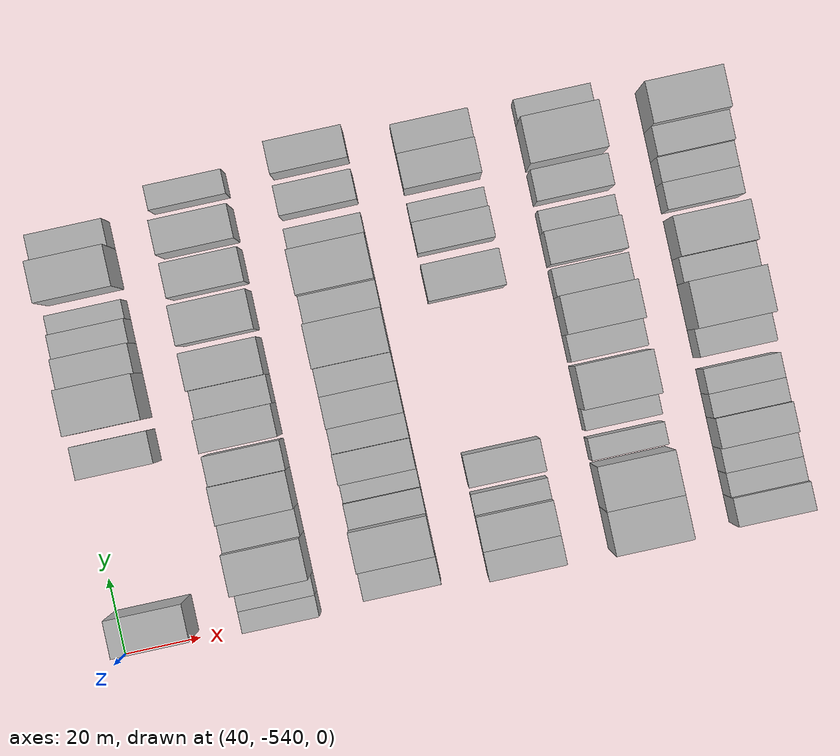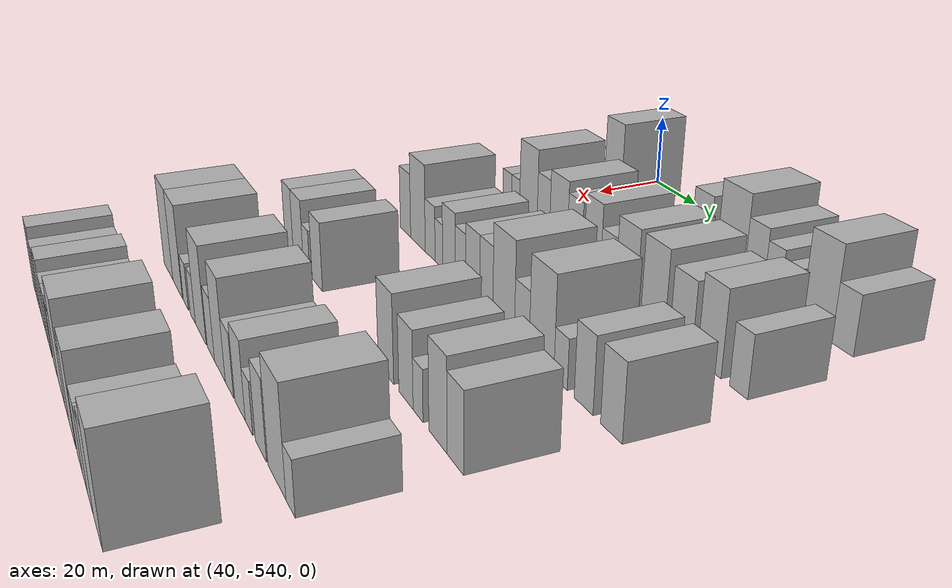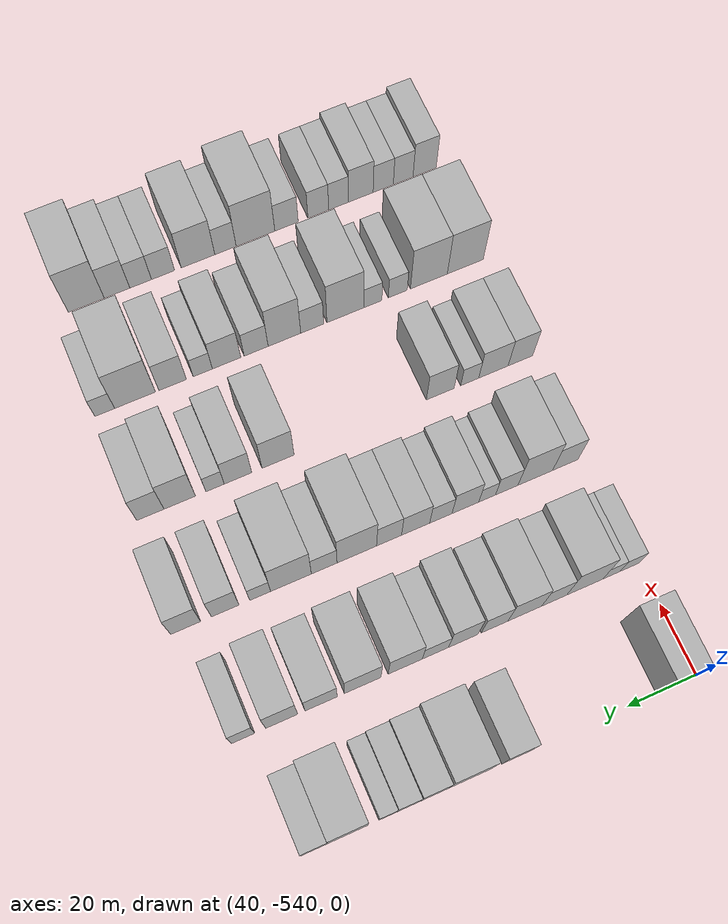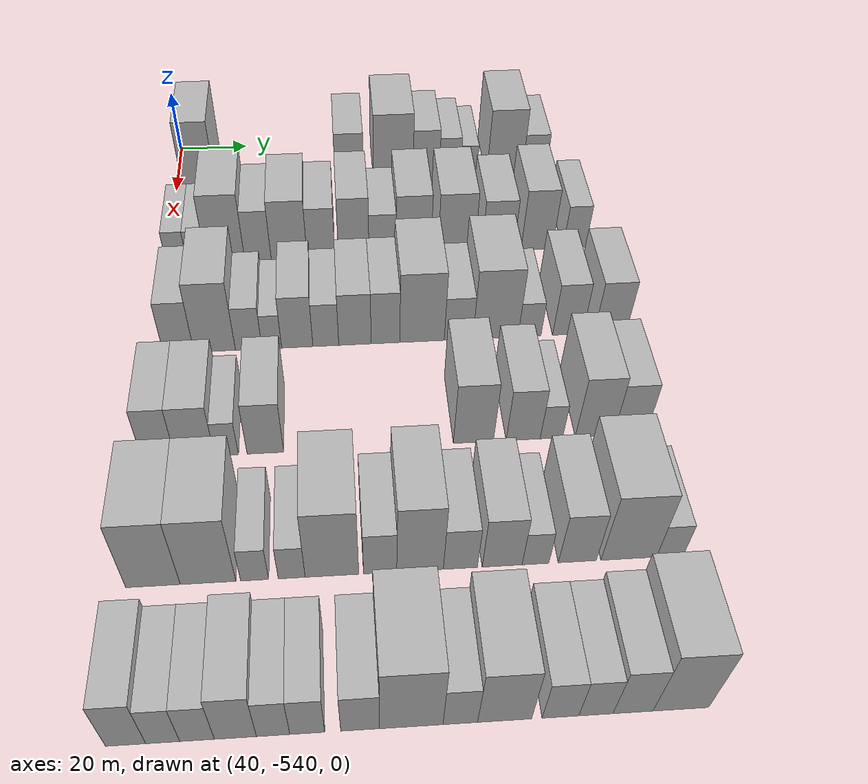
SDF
<sdf version="1.6">
 <world name="default">
  <model name="building_1">
   <static>1</static>
   <pose>50.0000 -533.1544 0 0.000000 0.000000 0.000000</pose>
   <link name="link">
    <pose>0 0 12.00 0 0 0</pose>
    <collision name="collision"><geometry><box><size>20.0000 9.6913 24.0000</size></box></geometry></collision>
    <visual name="visual">
     <cast_shadows>0</cast_shadows>
     <geometry><box><size>20.0000 9.6913 24.0000</size></box></geometry>
     <material>
      <script>
       <uri>model://HANNAS_wall/materials/scripts</uri>
       <uri>model://HANNAS_wall/materials/textures</uri>
       <name>vrc/HANNAS_wall</name>
      </script>
     </material>
    </visual>
   </link>
  </model>
  <model name="building_2">
   <static>1</static>
   <pose>50.0000 -488.7023 0 0.000000 0.000000 0.000000</pose>
   <link name="link">
    <pose>0 0 9.00 0 0 0</pose>
    <collision name="collision"><geometry><box><size>20.0000 8.4043 18.0000</size></box></geometry></collision>
    <visual name="visual">
     <cast_shadows>0</cast_shadows>
     <geometry><box><size>20.0000 8.4043 18.0000</size></box></geometry>
     <material>
      <script>
       <uri>model://HANNAS_wall/materials/scripts</uri>
       <uri>model://HANNAS_wall/materials/textures</uri>
       <name>vrc/HANNAS_wall</name>
      </script>
     </material>
    </visual>
   </link>
  </model>
  <model name="building_3">
   <static>1</static>
   <pose>50.0000 -475.6321 0 0.000000 0.000000 0.000000</pose>
   <link name="link">
    <pose>0 0 12.00 0 0 0</pose>
    <collision name="collision"><geometry><box><size>20.0000 11.7363 24.0000</size></box></geometry></collision>
    <visual name="visual">
     <cast_shadows>0</cast_shadows>
     <geometry><box><size>20.0000 11.7363 24.0000</size></box></geometry>
     <material>
      <script>
       <uri>model://HANNAS_wall/materials/scripts</uri>
       <uri>model://HANNAS_wall/materials/textures</uri>
       <name>vrc/HANNAS_wall</name>
      </script>
     </material>
    </visual>
   </link>
  </model>
  <model name="building_4">
   <static>1</static>
   <pose>50.0000 -465.8471 0 0.000000 0.000000 0.000000</pose>
   <link name="link">
    <pose>0 0 9.00 0 0 0</pose>
    <collision name="collision"><geometry><box><size>20.0000 7.8336 18.0000</size></box></geometry></collision>
    <visual name="visual">
     <cast_shadows>0</cast_shadows>
     <geometry><box><size>20.0000 7.8336 18.0000</size></box></geometry>
     <material>
      <script>
       <uri>model://HANNAS_wall/materials/scripts</uri>
       <uri>model://HANNAS_wall/materials/textures</uri>
       <name>vrc/HANNAS_wall</name>
      </script>
     </material>
    </visual>
   </link>
  </model>
  <model name="building_5">
   <static>1</static>
   <pose>50.0000 -458.7653 0 0.000000 0.000000 0.000000</pose>
   <link name="link">
    <pose>0 0 7.50 0 0 0</pose>
    <collision name="collision"><geometry><box><size>20.0000 6.3301 15.0000</size></box></geometry></collision>
    <visual name="visual">
     <cast_shadows>0</cast_shadows>
     <geometry><box><size>20.0000 6.3301 15.0000</size></box></geometry>
     <material>
      <script>
       <uri>model://HANNAS_wall/materials/scripts</uri>
       <uri>model://HANNAS_wall/materials/textures</uri>
       <name>vrc/HANNAS_wall</name>
      </script>
     </material>
    </visual>
   </link>
  </model>
  <model name="building_6">
   <static>1</static>
   <pose>50.0000 -453.1004 0 0.000000 0.000000 0.000000</pose>
   <link name="link">
    <pose>0 0 6.00 0 0 0</pose>
    <collision name="collision"><geometry><box><size>20.0000 4.9997 12.0000</size></box></geometry></collision>
    <visual name="visual">
     <cast_shadows>0</cast_shadows>
     <geometry><box><size>20.0000 4.9997 12.0000</size></box></geometry>
     <material>
      <script>
       <uri>model://HANNAS_wall/materials/scripts</uri>
       <uri>model://HANNAS_wall/materials/textures</uri>
       <name>vrc/HANNAS_wall</name>
      </script>
     </material>
    </visual>
   </link>
  </model>
  <model name="building_7">
   <static>1</static>
   <pose>50.0000 -442.2729 0 0.000000 0.000000 0.000000</pose>
   <link name="link">
    <pose>0 0 12.00 0 0 0</pose>
    <collision name="collision"><geometry><box><size>20.0000 10.6552 24.0000</size></box></geometry></collision>
    <visual name="visual">
     <cast_shadows>0</cast_shadows>
     <geometry><box><size>20.0000 10.6552 24.0000</size></box></geometry>
     <material>
      <script>
       <uri>model://HANNAS_wall/materials/scripts</uri>
       <uri>model://HANNAS_wall/materials/textures</uri>
       <name>vrc/HANNAS_wall</name>
      </script>
     </material>
    </visual>
   </link>
  </model>
  <model name="building_8">
   <static>1</static>
   <pose>50.0000 -433.3605 0 0.000000 0.000000 0.000000</pose>
   <link name="link">
    <pose>0 0 7.50 0 0 0</pose>
    <collision name="collision"><geometry><box><size>20.0000 7.1696 15.0000</size></box></geometry></collision>
    <visual name="visual">
     <cast_shadows>0</cast_shadows>
     <geometry><box><size>20.0000 7.1696 15.0000</size></box></geometry>
     <material>
      <script>
       <uri>model://HANNAS_wall/materials/scripts</uri>
       <uri>model://HANNAS_wall/materials/textures</uri>
       <name>vrc/HANNAS_wall</name>
      </script>
     </material>
    </visual>
   </link>
  </model>
  <model name="building_111">
   <static>1</static>
   <pose>82.0000 -537.1869 0 0.000000 0.000000 0.000000</pose>
   <link name="link">
    <pose>0 0 6.00 0 0 0</pose>
    <collision name="collision"><geometry><box><size>20.0000 5.6262 12.0000</size></box></geometry></collision>
    <visual name="visual">
     <cast_shadows>0</cast_shadows>
     <geometry><box><size>20.0000 5.6262 12.0000</size></box></geometry>
     <material>
      <script>
       <uri>model://HANNAS_wall/materials/scripts</uri>
       <uri>model://HANNAS_wall/materials/textures</uri>
       <name>vrc/HANNAS_wall</name>
      </script>
     </material>
    </visual>
   </link>
  </model>
  <model name="building_112">
   <static>1</static>
   <pose>82.0000 -531.8034 0 0.000000 0.000000 0.000000</pose>
   <link name="link">
    <pose>0 0 6.00 0 0 0</pose>
    <collision name="collision"><geometry><box><size>20.0000 5.1406 12.0000</size></box></geometry></collision>
    <visual name="visual">
     <cast_shadows>0</cast_shadows>
     <geometry><box><size>20.0000 5.1406 12.0000</size></box></geometry>
     <material>
      <script>
       <uri>model://HANNAS_wall/materials/scripts</uri>
       <uri>model://HANNAS_wall/materials/textures</uri>
       <name>vrc/HANNAS_wall</name>
      </script>
     </material>
    </visual>
   </link>
  </model>
  <model name="building_113">
   <static>1</static>
   <pose>82.0000 -523.9387 0 0.000000 0.000000 0.000000</pose>
   <link name="link">
    <pose>0 0 12.00 0 0 0</pose>
    <collision name="collision"><geometry><box><size>20.0000 10.5888 24.0000</size></box></geometry></collision>
    <visual name="visual">
     <cast_shadows>0</cast_shadows>
     <geometry><box><size>20.0000 10.5888 24.0000</size></box></geometry>
     <material>
      <script>
       <uri>model://HANNAS_wall/materials/scripts</uri>
       <uri>model://HANNAS_wall/materials/textures</uri>
       <name>vrc/HANNAS_wall</name>
      </script>
     </material>
    </visual>
   </link>
  </model>
  <model name="building_114">
   <static>1</static>
   <pose>82.0000 -515.0204 0 0.000000 0.000000 0.000000</pose>
   <link name="link">
    <pose>0 0 9.00 0 0 0</pose>
    <collision name="collision"><geometry><box><size>20.0000 7.2479 18.0000</size></box></geometry></collision>
    <visual name="visual">
     <cast_shadows>0</cast_shadows>
     <geometry><box><size>20.0000 7.2479 18.0000</size></box></geometry>
     <material>
      <script>
       <uri>model://HANNAS_wall/materials/scripts</uri>
       <uri>model://HANNAS_wall/materials/textures</uri>
       <name>vrc/HANNAS_wall</name>
      </script>
     </material>
    </visual>
   </link>
  </model>
  <model name="building_115">
   <static>1</static>
   <pose>82.0000 -506.4903 0 0.000000 0.000000 0.000000</pose>
   <link name="link">
    <pose>0 0 10.50 0 0 0</pose>
    <collision name="collision"><geometry><box><size>20.0000 9.8122 21.0000</size></box></geometry></collision>
    <visual name="visual">
     <cast_shadows>0</cast_shadows>
     <geometry><box><size>20.0000 9.8122 21.0000</size></box></geometry>
     <material>
      <script>
       <uri>model://HANNAS_wall/materials/scripts</uri>
       <uri>model://HANNAS_wall/materials/textures</uri>
       <name>vrc/HANNAS_wall</name>
      </script>
     </material>
    </visual>
   </link>
  </model>
  <model name="building_116">
   <static>1</static>
   <pose>82.0000 -497.7534 0 0.000000 0.000000 0.000000</pose>
   <link name="link">
    <pose>0 0 9.00 0 0 0</pose>
    <collision name="collision"><geometry><box><size>20.0000 7.6617 18.0000</size></box></geometry></collision>
    <visual name="visual">
     <cast_shadows>0</cast_shadows>
     <geometry><box><size>20.0000 7.6617 18.0000</size></box></geometry>
     <material>
      <script>
       <uri>model://HANNAS_wall/materials/scripts</uri>
       <uri>model://HANNAS_wall/materials/textures</uri>
       <name>vrc/HANNAS_wall</name>
      </script>
     </material>
    </visual>
   </link>
  </model>
  <model name="building_117">
   <static>1</static>
   <pose>82.0000 -488.7185 0 0.000000 0.000000 0.000000</pose>
   <link name="link">
    <pose>0 0 10.50 0 0 0</pose>
    <collision name="collision"><geometry><box><size>20.0000 8.4082 21.0000</size></box></geometry></collision>
    <visual name="visual">
     <cast_shadows>0</cast_shadows>
     <geometry><box><size>20.0000 8.4082 21.0000</size></box></geometry>
     <material>
      <script>
       <uri>model://HANNAS_wall/materials/scripts</uri>
       <uri>model://HANNAS_wall/materials/textures</uri>
       <name>vrc/HANNAS_wall</name>
      </script>
     </material>
    </visual>
   </link>
  </model>
  <model name="building_118">
   <static>1</static>
   <pose>82.0000 -480.7843 0 0.000000 0.000000 0.000000</pose>
   <link name="link">
    <pose>0 0 7.50 0 0 0</pose>
    <collision name="collision"><geometry><box><size>20.0000 7.4601 15.0000</size></box></geometry></collision>
    <visual name="visual">
     <cast_shadows>0</cast_shadows>
     <geometry><box><size>20.0000 7.4601 15.0000</size></box></geometry>
     <material>
      <script>
       <uri>model://HANNAS_wall/materials/scripts</uri>
       <uri>model://HANNAS_wall/materials/textures</uri>
       <name>vrc/HANNAS_wall</name>
      </script>
     </material>
    </visual>
   </link>
  </model>
  <model name="building_119">
   <static>1</static>
   <pose>82.0000 -472.2372 0 0.000000 0.000000 0.000000</pose>
   <link name="link">
    <pose>0 0 10.50 0 0 0</pose>
    <collision name="collision"><geometry><box><size>20.0000 9.6342 21.0000</size></box></geometry></collision>
    <visual name="visual">
     <cast_shadows>0</cast_shadows>
     <geometry><box><size>20.0000 9.6342 21.0000</size></box></geometry>
     <material>
      <script>
       <uri>model://HANNAS_wall/materials/scripts</uri>
       <uri>model://HANNAS_wall/materials/textures</uri>
       <name>vrc/HANNAS_wall</name>
      </script>
     </material>
    </visual>
   </link>
  </model>
  <model name="building_120">
   <static>1</static>
   <pose>82.0000 -460.2959 0 0.000000 0.000000 0.000000</pose>
   <link name="link">
    <pose>0 0 10.50 0 0 0</pose>
    <collision name="collision"><geometry><box><size>20.0000 10.2485 21.0000</size></box></geometry></collision>
    <visual name="visual">
     <cast_shadows>0</cast_shadows>
     <geometry><box><size>20.0000 10.2485 21.0000</size></box></geometry>
     <material>
      <script>
       <uri>model://HANNAS_wall/materials/scripts</uri>
       <uri>model://HANNAS_wall/materials/textures</uri>
       <name>vrc/HANNAS_wall</name>
      </script>
     </material>
    </visual>
   </link>
  </model>
  <model name="building_121">
   <static>1</static>
   <pose>82.0000 -448.6991 0 0.000000 0.000000 0.000000</pose>
   <link name="link">
    <pose>0 0 9.00 0 0 0</pose>
    <collision name="collision"><geometry><box><size>20.0000 8.9450 18.0000</size></box></geometry></collision>
    <visual name="visual">
     <cast_shadows>0</cast_shadows>
     <geometry><box><size>20.0000 8.9450 18.0000</size></box></geometry>
     <material>
      <script>
       <uri>model://HANNAS_wall/materials/scripts</uri>
       <uri>model://HANNAS_wall/materials/textures</uri>
       <name>vrc/HANNAS_wall</name>
      </script>
     </material>
    </visual>
   </link>
  </model>
  <model name="building_122">
   <static>1</static>
   <pose>82.0000 -437.8125 0 0.000000 0.000000 0.000000</pose>
   <link name="link">
    <pose>0 0 10.50 0 0 0</pose>
    <collision name="collision"><geometry><box><size>20.0000 8.8283 21.0000</size></box></geometry></collision>
    <visual name="visual">
     <cast_shadows>0</cast_shadows>
     <geometry><box><size>20.0000 8.8283 21.0000</size></box></geometry>
     <material>
      <script>
       <uri>model://HANNAS_wall/materials/scripts</uri>
       <uri>model://HANNAS_wall/materials/textures</uri>
       <name>vrc/HANNAS_wall</name>
      </script>
     </material>
    </visual>
   </link>
  </model>
  <model name="building_123">
   <static>1</static>
   <pose>82.0000 -427.2287 0 0.000000 0.000000 0.000000</pose>
   <link name="link">
    <pose>0 0 7.50 0 0 0</pose>
    <collision name="collision"><geometry><box><size>20.0000 6.3393 15.0000</size></box></geometry></collision>
    <visual name="visual">
     <cast_shadows>0</cast_shadows>
     <geometry><box><size>20.0000 6.3393 15.0000</size></box></geometry>
     <material>
      <script>
       <uri>model://HANNAS_wall/materials/scripts</uri>
       <uri>model://HANNAS_wall/materials/textures</uri>
       <name>vrc/HANNAS_wall</name>
      </script>
     </material>
    </visual>
   </link>
  </model>
  <model name="building_218">
   <static>1</static>
   <pose>114.0000 -534.1683 0 0.000000 0.000000 0.000000</pose>
   <link name="link">
    <pose>0 0 9.00 0 0 0</pose>
    <collision name="collision"><geometry><box><size>20.0000 7.6635 18.0000</size></box></geometry></collision>
    <visual name="visual">
     <cast_shadows>0</cast_shadows>
     <geometry><box><size>20.0000 7.6635 18.0000</size></box></geometry>
     <material>
      <script>
       <uri>model://HANNAS_wall/materials/scripts</uri>
       <uri>model://HANNAS_wall/materials/textures</uri>
       <name>vrc/HANNAS_wall</name>
      </script>
     </material>
    </visual>
   </link>
  </model>
  <model name="building_219">
   <static>1</static>
   <pose>114.0000 -525.1397 0 0.000000 0.000000 0.000000</pose>
   <link name="link">
    <pose>0 0 12.00 0 0 0</pose>
    <collision name="collision"><geometry><box><size>20.0000 10.3936 24.0000</size></box></geometry></collision>
    <visual name="visual">
     <cast_shadows>0</cast_shadows>
     <geometry><box><size>20.0000 10.3936 24.0000</size></box></geometry>
     <material>
      <script>
       <uri>model://HANNAS_wall/materials/scripts</uri>
       <uri>model://HANNAS_wall/materials/textures</uri>
       <name>vrc/HANNAS_wall</name>
      </script>
     </material>
    </visual>
   </link>
  </model>
  <model name="building_220">
   <static>1</static>
   <pose>114.0000 -516.5947 0 0.000000 0.000000 0.000000</pose>
   <link name="link">
    <pose>0 0 7.50 0 0 0</pose>
    <collision name="collision"><geometry><box><size>20.0000 6.6965 15.0000</size></box></geometry></collision>
    <visual name="visual">
     <cast_shadows>0</cast_shadows>
     <geometry><box><size>20.0000 6.6965 15.0000</size></box></geometry>
     <material>
      <script>
       <uri>model://HANNAS_wall/materials/scripts</uri>
       <uri>model://HANNAS_wall/materials/textures</uri>
       <name>vrc/HANNAS_wall</name>
      </script>
     </material>
    </visual>
   </link>
  </model>
  <model name="building_221">
   <static>1</static>
   <pose>114.0000 -510.7768 0 0.000000 0.000000 0.000000</pose>
   <link name="link">
    <pose>0 0 6.00 0 0 0</pose>
    <collision name="collision"><geometry><box><size>20.0000 4.9392 12.0000</size></box></geometry></collision>
    <visual name="visual">
     <cast_shadows>0</cast_shadows>
     <geometry><box><size>20.0000 4.9392 12.0000</size></box></geometry>
     <material>
      <script>
       <uri>model://HANNAS_wall/materials/scripts</uri>
       <uri>model://HANNAS_wall/materials/textures</uri>
       <name>vrc/HANNAS_wall</name>
      </script>
     </material>
    </visual>
   </link>
  </model>
  <model name="building_222">
   <static>1</static>
   <pose>114.0000 -504.3592 0 0.000000 0.000000 0.000000</pose>
   <link name="link">
    <pose>0 0 9.00 0 0 0</pose>
    <collision name="collision"><geometry><box><size>20.0000 7.8959 18.0000</size></box></geometry></collision>
    <visual name="visual">
     <cast_shadows>0</cast_shadows>
     <geometry><box><size>20.0000 7.8959 18.0000</size></box></geometry>
     <material>
      <script>
       <uri>model://HANNAS_wall/materials/scripts</uri>
       <uri>model://HANNAS_wall/materials/textures</uri>
       <name>vrc/HANNAS_wall</name>
      </script>
     </material>
    </visual>
   </link>
  </model>
  <model name="building_223">
   <static>1</static>
   <pose>114.0000 -497.1288 0 0.000000 0.000000 0.000000</pose>
   <link name="link">
    <pose>0 0 7.50 0 0 0</pose>
    <collision name="collision"><geometry><box><size>20.0000 6.5648 15.0000</size></box></geometry></collision>
    <visual name="visual">
     <cast_shadows>0</cast_shadows>
     <geometry><box><size>20.0000 6.5648 15.0000</size></box></geometry>
     <material>
      <script>
       <uri>model://HANNAS_wall/materials/scripts</uri>
       <uri>model://HANNAS_wall/materials/textures</uri>
       <name>vrc/HANNAS_wall</name>
      </script>
     </material>
    </visual>
   </link>
  </model>
  <model name="building_224">
   <static>1</static>
   <pose>114.0000 -489.7370 0 0.000000 0.000000 0.000000</pose>
   <link name="link">
    <pose>0 0 9.00 0 0 0</pose>
    <collision name="collision"><geometry><box><size>20.0000 8.2188 18.0000</size></box></geometry></collision>
    <visual name="visual">
     <cast_shadows>0</cast_shadows>
     <geometry><box><size>20.0000 8.2188 18.0000</size></box></geometry>
     <material>
      <script>
       <uri>model://HANNAS_wall/materials/scripts</uri>
       <uri>model://HANNAS_wall/materials/textures</uri>
       <name>vrc/HANNAS_wall</name>
      </script>
     </material>
    </visual>
   </link>
  </model>
  <model name="building_225">
   <static>1</static>
   <pose>114.0000 -481.9946 0 0.000000 0.000000 0.000000</pose>
   <link name="link">
    <pose>0 0 9.00 0 0 0</pose>
    <collision name="collision"><geometry><box><size>20.0000 7.2662 18.0000</size></box></geometry></collision>
    <visual name="visual">
     <cast_shadows>0</cast_shadows>
     <geometry><box><size>20.0000 7.2662 18.0000</size></box></geometry>
     <material>
      <script>
       <uri>model://HANNAS_wall/materials/scripts</uri>
       <uri>model://HANNAS_wall/materials/textures</uri>
       <name>vrc/HANNAS_wall</name>
      </script>
     </material>
    </visual>
   </link>
  </model>
  <model name="building_226">
   <static>1</static>
   <pose>114.0000 -472.6661 0 0.000000 0.000000 0.000000</pose>
   <link name="link">
    <pose>0 0 12.00 0 0 0</pose>
    <collision name="collision"><geometry><box><size>20.0000 11.3907 24.0000</size></box></geometry></collision>
    <visual name="visual">
     <cast_shadows>0</cast_shadows>
     <geometry><box><size>20.0000 11.3907 24.0000</size></box></geometry>
     <material>
      <script>
       <uri>model://HANNAS_wall/materials/scripts</uri>
       <uri>model://HANNAS_wall/materials/textures</uri>
       <name>vrc/HANNAS_wall</name>
      </script>
     </material>
    </visual>
   </link>
  </model>
  <model name="building_227">
   <static>1</static>
   <pose>114.0000 -463.2926 0 0.000000 0.000000 0.000000</pose>
   <link name="link">
    <pose>0 0 7.50 0 0 0</pose>
    <collision name="collision"><geometry><box><size>20.0000 7.3563 15.0000</size></box></geometry></collision>
    <visual name="visual">
     <cast_shadows>0</cast_shadows>
     <geometry><box><size>20.0000 7.3563 15.0000</size></box></geometry>
     <material>
      <script>
       <uri>model://HANNAS_wall/materials/scripts</uri>
       <uri>model://HANNAS_wall/materials/textures</uri>
       <name>vrc/HANNAS_wall</name>
      </script>
     </material>
    </visual>
   </link>
  </model>
  <model name="building_228">
   <static>1</static>
   <pose>114.0000 -453.8165 0 0.000000 0.000000 0.000000</pose>
   <link name="link">
    <pose>0 0 12.00 0 0 0</pose>
    <collision name="collision"><geometry><box><size>20.0000 11.5959 24.0000</size></box></geometry></collision>
    <visual name="visual">
     <cast_shadows>0</cast_shadows>
     <geometry><box><size>20.0000 11.5959 24.0000</size></box></geometry>
     <material>
      <script>
       <uri>model://HANNAS_wall/materials/scripts</uri>
       <uri>model://HANNAS_wall/materials/textures</uri>
       <name>vrc/HANNAS_wall</name>
      </script>
     </material>
    </visual>
   </link>
  </model>
  <model name="building_229">
   <static>1</static>
   <pose>114.0000 -445.0546 0 0.000000 0.000000 0.000000</pose>
   <link name="link">
    <pose>0 0 6.00 0 0 0</pose>
    <collision name="collision"><geometry><box><size>20.0000 5.9278 12.0000</size></box></geometry></collision>
    <visual name="visual">
     <cast_shadows>0</cast_shadows>
     <geometry><box><size>20.0000 5.9278 12.0000</size></box></geometry>
     <material>
      <script>
       <uri>model://HANNAS_wall/materials/scripts</uri>
       <uri>model://HANNAS_wall/materials/textures</uri>
       <name>vrc/HANNAS_wall</name>
      </script>
     </material>
    </visual>
   </link>
  </model>
  <model name="building_230">
   <static>1</static>
   <pose>114.0000 -435.2041 0 0.000000 0.000000 0.000000</pose>
   <link name="link">
    <pose>0 0 9.00 0 0 0</pose>
    <collision name="collision"><geometry><box><size>20.0000 7.7733 18.0000</size></box></geometry></collision>
    <visual name="visual">
     <cast_shadows>0</cast_shadows>
     <geometry><box><size>20.0000 7.7733 18.0000</size></box></geometry>
     <material>
      <script>
       <uri>model://HANNAS_wall/materials/scripts</uri>
       <uri>model://HANNAS_wall/materials/textures</uri>
       <name>vrc/HANNAS_wall</name>
      </script>
     </material>
    </visual>
   </link>
  </model>
  <model name="building_231">
   <static>1</static>
   <pose>114.0000 -424.1363 0 0.000000 0.000000 0.000000</pose>
   <link name="link">
    <pose>0 0 9.00 0 0 0</pose>
    <collision name="collision"><geometry><box><size>20.0000 8.3623 18.0000</size></box></geometry></collision>
    <visual name="visual">
     <cast_shadows>0</cast_shadows>
     <geometry><box><size>20.0000 8.3623 18.0000</size></box></geometry>
     <material>
      <script>
       <uri>model://HANNAS_wall/materials/scripts</uri>
       <uri>model://HANNAS_wall/materials/textures</uri>
       <name>vrc/HANNAS_wall</name>
      </script>
     </material>
    </visual>
   </link>
  </model>
  <model name="building_337">
   <static>1</static>
   <pose>146.0000 -536.2122 0 0.000000 0.000000 0.000000</pose>
   <link name="link">
    <pose>0 0 9.00 0 0 0</pose>
    <collision name="collision"><geometry><box><size>20.0000 7.5755 18.0000</size></box></geometry></collision>
    <visual name="visual">
     <cast_shadows>0</cast_shadows>
     <geometry><box><size>20.0000 7.5755 18.0000</size></box></geometry>
     <material>
      <script>
       <uri>model://HANNAS_wall/materials/scripts</uri>
       <uri>model://HANNAS_wall/materials/textures</uri>
       <name>vrc/HANNAS_wall</name>
      </script>
     </material>
    </visual>
   </link>
  </model>
  <model name="building_338">
   <static>1</static>
   <pose>146.0000 -527.9289 0 0.000000 0.000000 0.000000</pose>
   <link name="link">
    <pose>0 0 9.00 0 0 0</pose>
    <collision name="collision"><geometry><box><size>20.0000 8.9912 18.0000</size></box></geometry></collision>
    <visual name="visual">
     <cast_shadows>0</cast_shadows>
     <geometry><box><size>20.0000 8.9912 18.0000</size></box></geometry>
     <material>
      <script>
       <uri>model://HANNAS_wall/materials/scripts</uri>
       <uri>model://HANNAS_wall/materials/textures</uri>
       <name>vrc/HANNAS_wall</name>
      </script>
     </material>
    </visual>
   </link>
  </model>
  <model name="building_339">
   <static>1</static>
   <pose>146.0000 -520.6929 0 0.000000 0.000000 0.000000</pose>
   <link name="link">
    <pose>0 0 6.00 0 0 0</pose>
    <collision name="collision"><geometry><box><size>20.0000 5.4808 12.0000</size></box></geometry></collision>
    <visual name="visual">
     <cast_shadows>0</cast_shadows>
     <geometry><box><size>20.0000 5.4808 12.0000</size></box></geometry>
     <material>
      <script>
       <uri>model://HANNAS_wall/materials/scripts</uri>
       <uri>model://HANNAS_wall/materials/textures</uri>
       <name>vrc/HANNAS_wall</name>
      </script>
     </material>
    </visual>
   </link>
  </model>
  <model name="building_340">
   <static>1</static>
   <pose>146.0000 -511.7498 0 0.000000 0.000000 0.000000</pose>
   <link name="link">
    <pose>0 0 9.00 0 0 0</pose>
    <collision name="collision"><geometry><box><size>20.0000 8.4054 18.0000</size></box></geometry></collision>
    <visual name="visual">
     <cast_shadows>0</cast_shadows>
     <geometry><box><size>20.0000 8.4054 18.0000</size></box></geometry>
     <material>
      <script>
       <uri>model://HANNAS_wall/materials/scripts</uri>
       <uri>model://HANNAS_wall/materials/textures</uri>
       <name>vrc/HANNAS_wall</name>
      </script>
     </material>
    </visual>
   </link>
  </model>
  <model name="building_341">
   <static>1</static>
   <pose>146.0000 -463.4768 0 0.000000 0.000000 0.000000</pose>
   <link name="link">
    <pose>0 0 10.50 0 0 0</pose>
    <collision name="collision"><geometry><box><size>20.0000 9.3802 21.0000</size></box></geometry></collision>
    <visual name="visual">
     <cast_shadows>0</cast_shadows>
     <geometry><box><size>20.0000 9.3802 21.0000</size></box></geometry>
     <material>
      <script>
       <uri>model://HANNAS_wall/materials/scripts</uri>
       <uri>model://HANNAS_wall/materials/textures</uri>
       <name>vrc/HANNAS_wall</name>
      </script>
     </material>
    </visual>
   </link>
  </model>
  <model name="building_342">
   <static>1</static>
   <pose>146.0000 -451.7834 0 0.000000 0.000000 0.000000</pose>
   <link name="link">
    <pose>0 0 9.00 0 0 0</pose>
    <collision name="collision"><geometry><box><size>20.0000 8.0065 18.0000</size></box></geometry></collision>
    <visual name="visual">
     <cast_shadows>0</cast_shadows>
     <geometry><box><size>20.0000 8.0065 18.0000</size></box></geometry>
     <material>
      <script>
       <uri>model://HANNAS_wall/materials/scripts</uri>
       <uri>model://HANNAS_wall/materials/textures</uri>
       <name>vrc/HANNAS_wall</name>
      </script>
     </material>
    </visual>
   </link>
  </model>
  <model name="building_343">
   <static>1</static>
   <pose>146.0000 -445.1301 0 0.000000 0.000000 0.000000</pose>
   <link name="link">
    <pose>0 0 6.00 0 0 0</pose>
    <collision name="collision"><geometry><box><size>20.0000 5.3001 12.0000</size></box></geometry></collision>
    <visual name="visual">
     <cast_shadows>0</cast_shadows>
     <geometry><box><size>20.0000 5.3001 12.0000</size></box></geometry>
     <material>
      <script>
       <uri>model://HANNAS_wall/materials/scripts</uri>
       <uri>model://HANNAS_wall/materials/textures</uri>
       <name>vrc/HANNAS_wall</name>
      </script>
     </material>
    </visual>
   </link>
  </model>
  <model name="building_344">
   <static>1</static>
   <pose>146.0000 -434.9575 0 0.000000 0.000000 0.000000</pose>
   <link name="link">
    <pose>0 0 10.50 0 0 0</pose>
    <collision name="collision"><geometry><box><size>20.0000 9.0452 21.0000</size></box></geometry></collision>
    <visual name="visual">
     <cast_shadows>0</cast_shadows>
     <geometry><box><size>20.0000 9.0452 21.0000</size></box></geometry>
     <material>
      <script>
       <uri>model://HANNAS_wall/materials/scripts</uri>
       <uri>model://HANNAS_wall/materials/textures</uri>
       <name>vrc/HANNAS_wall</name>
      </script>
     </material>
    </visual>
   </link>
  </model>
  <model name="building_345">
   <static>1</static>
   <pose>146.0000 -426.5508 0 0.000000 0.000000 0.000000</pose>
   <link name="link">
    <pose>0 0 9.00 0 0 0</pose>
    <collision name="collision"><geometry><box><size>20.0000 7.7682 18.0000</size></box></geometry></collision>
    <visual name="visual">
     <cast_shadows>0</cast_shadows>
     <geometry><box><size>20.0000 7.7682 18.0000</size></box></geometry>
     <material>
      <script>
       <uri>model://HANNAS_wall/materials/scripts</uri>
       <uri>model://HANNAS_wall/materials/textures</uri>
       <name>vrc/HANNAS_wall</name>
      </script>
     </material>
    </visual>
   </link>
  </model>
  <model name="building_462">
   <static>1</static>
   <pose>178.0000 -534.3700 0 0.000000 0.000000 0.000000</pose>
   <link name="link">
    <pose>0 0 12.00 0 0 0</pose>
    <collision name="collision"><geometry><box><size>20.0000 11.2599 24.0000</size></box></geometry></collision>
    <visual name="visual">
     <cast_shadows>0</cast_shadows>
     <geometry><box><size>20.0000 11.2599 24.0000</size></box></geometry>
     <material>
      <script>
       <uri>model://HANNAS_wall/materials/scripts</uri>
       <uri>model://HANNAS_wall/materials/textures</uri>
       <name>vrc/HANNAS_wall</name>
      </script>
     </material>
    </visual>
   </link>
  </model>
  <model name="building_463">
   <static>1</static>
   <pose>178.0000 -522.9968 0 0.000000 0.000000 0.000000</pose>
   <link name="link">
    <pose>0 0 12.00 0 0 0</pose>
    <collision name="collision"><geometry><box><size>20.0000 11.4866 24.0000</size></box></geometry></collision>
    <visual name="visual">
     <cast_shadows>0</cast_shadows>
     <geometry><box><size>20.0000 11.4866 24.0000</size></box></geometry>
     <material>
      <script>
       <uri>model://HANNAS_wall/materials/scripts</uri>
       <uri>model://HANNAS_wall/materials/textures</uri>
       <name>vrc/HANNAS_wall</name>
      </script>
     </material>
    </visual>
   </link>
  </model>
  <model name="building_464">
   <static>1</static>
   <pose>178.0000 -513.3436 0 0.000000 0.000000 0.000000</pose>
   <link name="link">
    <pose>0 0 6.00 0 0 0</pose>
    <collision name="collision"><geometry><box><size>20.0000 5.8198 12.0000</size></box></geometry></collision>
    <visual name="visual">
     <cast_shadows>0</cast_shadows>
     <geometry><box><size>20.0000 5.8198 12.0000</size></box></geometry>
     <material>
      <script>
       <uri>model://HANNAS_wall/materials/scripts</uri>
       <uri>model://HANNAS_wall/materials/textures</uri>
       <name>vrc/HANNAS_wall</name>
      </script>
     </material>
    </visual>
   </link>
  </model>
  <model name="building_465">
   <static>1</static>
   <pose>178.0000 -505.6312 0 0.000000 0.000000 0.000000</pose>
   <link name="link">
    <pose>0 0 6.00 0 0 0</pose>
    <collision name="collision"><geometry><box><size>20.0000 5.6050 12.0000</size></box></geometry></collision>
    <visual name="visual">
     <cast_shadows>0</cast_shadows>
     <geometry><box><size>20.0000 5.6050 12.0000</size></box></geometry>
     <material>
      <script>
       <uri>model://HANNAS_wall/materials/scripts</uri>
       <uri>model://HANNAS_wall/materials/textures</uri>
       <name>vrc/HANNAS_wall</name>
      </script>
     </material>
    </visual>
   </link>
  </model>
  <model name="building_466">
   <static>1</static>
   <pose>178.0000 -497.2219 0 0.000000 0.000000 0.000000</pose>
   <link name="link">
    <pose>0 0 12.00 0 0 0</pose>
    <collision name="collision"><geometry><box><size>20.0000 11.2135 24.0000</size></box></geometry></collision>
    <visual name="visual">
     <cast_shadows>0</cast_shadows>
     <geometry><box><size>20.0000 11.2135 24.0000</size></box></geometry>
     <material>
      <script>
       <uri>model://HANNAS_wall/materials/scripts</uri>
       <uri>model://HANNAS_wall/materials/textures</uri>
       <name>vrc/HANNAS_wall</name>
      </script>
     </material>
    </visual>
   </link>
  </model>
  <model name="building_467">
   <static>1</static>
   <pose>178.0000 -487.1347 0 0.000000 0.000000 0.000000</pose>
   <link name="link">
    <pose>0 0 7.50 0 0 0</pose>
    <collision name="collision"><geometry><box><size>20.0000 6.9610 15.0000</size></box></geometry></collision>
    <visual name="visual">
     <cast_shadows>0</cast_shadows>
     <geometry><box><size>20.0000 6.9610 15.0000</size></box></geometry>
     <material>
      <script>
       <uri>model://HANNAS_wall/materials/scripts</uri>
       <uri>model://HANNAS_wall/materials/textures</uri>
       <name>vrc/HANNAS_wall</name>
      </script>
     </material>
    </visual>
   </link>
  </model>
  <model name="building_468">
   <static>1</static>
   <pose>178.0000 -478.7359 0 0.000000 0.000000 0.000000</pose>
   <link name="link">
    <pose>0 0 12.00 0 0 0</pose>
    <collision name="collision"><geometry><box><size>20.0000 9.8367 24.0000</size></box></geometry></collision>
    <visual name="visual">
     <cast_shadows>0</cast_shadows>
     <geometry><box><size>20.0000 9.8367 24.0000</size></box></geometry>
     <material>
      <script>
       <uri>model://HANNAS_wall/materials/scripts</uri>
       <uri>model://HANNAS_wall/materials/textures</uri>
       <name>vrc/HANNAS_wall</name>
      </script>
     </material>
    </visual>
   </link>
  </model>
  <model name="building_469">
   <static>1</static>
   <pose>178.0000 -470.2101 0 0.000000 0.000000 0.000000</pose>
   <link name="link">
    <pose>0 0 7.50 0 0 0</pose>
    <collision name="collision"><geometry><box><size>20.0000 7.2148 15.0000</size></box></geometry></collision>
    <visual name="visual">
     <cast_shadows>0</cast_shadows>
     <geometry><box><size>20.0000 7.2148 15.0000</size></box></geometry>
     <material>
      <script>
       <uri>model://HANNAS_wall/materials/scripts</uri>
       <uri>model://HANNAS_wall/materials/textures</uri>
       <name>vrc/HANNAS_wall</name>
      </script>
     </material>
    </visual>
   </link>
  </model>
  <model name="building_470">
   <static>1</static>
   <pose>178.0000 -461.3629 0 0.000000 0.000000 0.000000</pose>
   <link name="link">
    <pose>0 0 9.00 0 0 0</pose>
    <collision name="collision"><geometry><box><size>20.0000 8.4797 18.0000</size></box></geometry></collision>
    <visual name="visual">
     <cast_shadows>0</cast_shadows>
     <geometry><box><size>20.0000 8.4797 18.0000</size></box></geometry>
     <material>
      <script>
       <uri>model://HANNAS_wall/materials/scripts</uri>
       <uri>model://HANNAS_wall/materials/textures</uri>
       <name>vrc/HANNAS_wall</name>
      </script>
     </material>
    </visual>
   </link>
  </model>
  <model name="building_471">
   <static>1</static>
   <pose>178.0000 -454.2690 0 0.000000 0.000000 0.000000</pose>
   <link name="link">
    <pose>0 0 6.00 0 0 0</pose>
    <collision name="collision"><geometry><box><size>20.0000 5.7081 12.0000</size></box></geometry></collision>
    <visual name="visual">
     <cast_shadows>0</cast_shadows>
     <geometry><box><size>20.0000 5.7081 12.0000</size></box></geometry>
     <material>
      <script>
       <uri>model://HANNAS_wall/materials/scripts</uri>
       <uri>model://HANNAS_wall/materials/textures</uri>
       <name>vrc/HANNAS_wall</name>
      </script>
     </material>
    </visual>
   </link>
  </model>
  <model name="building_472">
   <static>1</static>
   <pose>178.0000 -445.3496 0 0.000000 0.000000 0.000000</pose>
   <link name="link">
    <pose>0 0 9.00 0 0 0</pose>
    <collision name="collision"><geometry><box><size>20.0000 8.1307 18.0000</size></box></geometry></collision>
    <visual name="visual">
     <cast_shadows>0</cast_shadows>
     <geometry><box><size>20.0000 8.1307 18.0000</size></box></geometry>
     <material>
      <script>
       <uri>model://HANNAS_wall/materials/scripts</uri>
       <uri>model://HANNAS_wall/materials/textures</uri>
       <name>vrc/HANNAS_wall</name>
      </script>
     </material>
    </visual>
   </link>
  </model>
  <model name="building_473">
   <static>1</static>
   <pose>178.0000 -434.3030 0 0.000000 0.000000 0.000000</pose>
   <link name="link">
    <pose>0 0 12.00 0 0 0</pose>
    <collision name="collision"><geometry><box><size>20.0000 11.9625 24.0000</size></box></geometry></collision>
    <visual name="visual">
     <cast_shadows>0</cast_shadows>
     <geometry><box><size>20.0000 11.9625 24.0000</size></box></geometry>
     <material>
      <script>
       <uri>model://HANNAS_wall/materials/scripts</uri>
       <uri>model://HANNAS_wall/materials/textures</uri>
       <name>vrc/HANNAS_wall</name>
      </script>
     </material>
    </visual>
   </link>
  </model>
  <model name="building_474">
   <static>1</static>
   <pose>178.0000 -425.4354 0 0.000000 0.000000 0.000000</pose>
   <link name="link">
    <pose>0 0 6.00 0 0 0</pose>
    <collision name="collision"><geometry><box><size>20.0000 5.7727 12.0000</size></box></geometry></collision>
    <visual name="visual">
     <cast_shadows>0</cast_shadows>
     <geometry><box><size>20.0000 5.7727 12.0000</size></box></geometry>
     <material>
      <script>
       <uri>model://HANNAS_wall/materials/scripts</uri>
       <uri>model://HANNAS_wall/materials/textures</uri>
       <name>vrc/HANNAS_wall</name>
      </script>
     </material>
    </visual>
   </link>
  </model>
  <model name="building_582">
   <static>1</static>
   <pose>210.0000 -536.2980 0 0.000000 0.000000 0.000000</pose>
   <link name="link">
    <pose>0 0 9.00 0 0 0</pose>
    <collision name="collision"><geometry><box><size>20.0000 7.4040 18.0000</size></box></geometry></collision>
    <visual name="visual">
     <cast_shadows>0</cast_shadows>
     <geometry><box><size>20.0000 7.4040 18.0000</size></box></geometry>
     <material>
      <script>
       <uri>model://HANNAS_wall/materials/scripts</uri>
       <uri>model://HANNAS_wall/materials/textures</uri>
       <name>vrc/HANNAS_wall</name>
      </script>
     </material>
    </visual>
   </link>
  </model>
  <model name="building_583">
   <static>1</static>
   <pose>210.0000 -529.4660 0 0.000000 0.000000 0.000000</pose>
   <link name="link">
    <pose>0 0 7.50 0 0 0</pose>
    <collision name="collision"><geometry><box><size>20.0000 6.2599 15.0000</size></box></geometry></collision>
    <visual name="visual">
     <cast_shadows>0</cast_shadows>
     <geometry><box><size>20.0000 6.2599 15.0000</size></box></geometry>
     <material>
      <script>
       <uri>model://HANNAS_wall/materials/scripts</uri>
       <uri>model://HANNAS_wall/materials/textures</uri>
       <name>vrc/HANNAS_wall</name>
      </script>
     </material>
    </visual>
   </link>
  </model>
  <model name="building_584">
   <static>1</static>
   <pose>210.0000 -523.1326 0 0.000000 0.000000 0.000000</pose>
   <link name="link">
    <pose>0 0 7.50 0 0 0</pose>
    <collision name="collision"><geometry><box><size>20.0000 6.4069 15.0000</size></box></geometry></collision>
    <visual name="visual">
     <cast_shadows>0</cast_shadows>
     <geometry><box><size>20.0000 6.4069 15.0000</size></box></geometry>
     <material>
      <script>
       <uri>model://HANNAS_wall/materials/scripts</uri>
       <uri>model://HANNAS_wall/materials/textures</uri>
       <name>vrc/HANNAS_wall</name>
      </script>
     </material>
    </visual>
   </link>
  </model>
  <model name="building_585">
   <static>1</static>
   <pose>210.0000 -516.0272 0 0.000000 0.000000 0.000000</pose>
   <link name="link">
    <pose>0 0 9.00 0 0 0</pose>
    <collision name="collision"><geometry><box><size>20.0000 7.8041 18.0000</size></box></geometry></collision>
    <visual name="visual">
     <cast_shadows>0</cast_shadows>
     <geometry><box><size>20.0000 7.8041 18.0000</size></box></geometry>
     <material>
      <script>
       <uri>model://HANNAS_wall/materials/scripts</uri>
       <uri>model://HANNAS_wall/materials/textures</uri>
       <name>vrc/HANNAS_wall</name>
      </script>
     </material>
    </visual>
   </link>
  </model>
  <model name="building_586">
   <static>1</static>
   <pose>210.0000 -509.0224 0 0.000000 0.000000 0.000000</pose>
   <link name="link">
    <pose>0 0 7.50 0 0 0</pose>
    <collision name="collision"><geometry><box><size>20.0000 6.2055 15.0000</size></box></geometry></collision>
    <visual name="visual">
     <cast_shadows>0</cast_shadows>
     <geometry><box><size>20.0000 6.2055 15.0000</size></box></geometry>
     <material>
      <script>
       <uri>model://HANNAS_wall/materials/scripts</uri>
       <uri>model://HANNAS_wall/materials/textures</uri>
       <name>vrc/HANNAS_wall</name>
      </script>
     </material>
    </visual>
   </link>
  </model>
  <model name="building_587">
   <static>1</static>
   <pose>210.0000 -502.6658 0 0.000000 0.000000 0.000000</pose>
   <link name="link">
    <pose>0 0 7.50 0 0 0</pose>
    <collision name="collision"><geometry><box><size>20.0000 6.5077 15.0000</size></box></geometry></collision>
    <visual name="visual">
     <cast_shadows>0</cast_shadows>
     <geometry><box><size>20.0000 6.5077 15.0000</size></box></geometry>
     <material>
      <script>
       <uri>model://HANNAS_wall/materials/scripts</uri>
       <uri>model://HANNAS_wall/materials/textures</uri>
       <name>vrc/HANNAS_wall</name>
      </script>
     </material>
    </visual>
   </link>
  </model>
  <model name="building_588">
   <static>1</static>
   <pose>210.0000 -492.7747 0 0.000000 0.000000 0.000000</pose>
   <link name="link">
    <pose>0 0 7.50 0 0 0</pose>
    <collision name="collision"><geometry><box><size>20.0000 7.2744 15.0000</size></box></geometry></collision>
    <visual name="visual">
     <cast_shadows>0</cast_shadows>
     <geometry><box><size>20.0000 7.2744 15.0000</size></box></geometry>
     <material>
      <script>
       <uri>model://HANNAS_wall/materials/scripts</uri>
       <uri>model://HANNAS_wall/materials/textures</uri>
       <name>vrc/HANNAS_wall</name>
      </script>
     </material>
    </visual>
   </link>
  </model>
  <model name="building_589">
   <static>1</static>
   <pose>210.0000 -483.1630 0 0.000000 0.000000 0.000000</pose>
   <link name="link">
    <pose>0 0 12.00 0 0 0</pose>
    <collision name="collision"><geometry><box><size>20.0000 11.9490 24.0000</size></box></geometry></collision>
    <visual name="visual">
     <cast_shadows>0</cast_shadows>
     <geometry><box><size>20.0000 11.9490 24.0000</size></box></geometry>
     <material>
      <script>
       <uri>model://HANNAS_wall/materials/scripts</uri>
       <uri>model://HANNAS_wall/materials/textures</uri>
       <name>vrc/HANNAS_wall</name>
      </script>
     </material>
    </visual>
   </link>
  </model>
  <model name="building_590">
   <static>1</static>
   <pose>210.0000 -473.9184 0 0.000000 0.000000 0.000000</pose>
   <link name="link">
    <pose>0 0 7.50 0 0 0</pose>
    <collision name="collision"><geometry><box><size>20.0000 6.5400 15.0000</size></box></geometry></collision>
    <visual name="visual">
     <cast_shadows>0</cast_shadows>
     <geometry><box><size>20.0000 6.5400 15.0000</size></box></geometry>
     <material>
      <script>
       <uri>model://HANNAS_wall/materials/scripts</uri>
       <uri>model://HANNAS_wall/materials/textures</uri>
       <name>vrc/HANNAS_wall</name>
      </script>
     </material>
    </visual>
   </link>
  </model>
  <model name="building_591">
   <static>1</static>
   <pose>210.0000 -465.5117 0 0.000000 0.000000 0.000000</pose>
   <link name="link">
    <pose>0 0 10.50 0 0 0</pose>
    <collision name="collision"><geometry><box><size>20.0000 10.2734 21.0000</size></box></geometry></collision>
    <visual name="visual">
     <cast_shadows>0</cast_shadows>
     <geometry><box><size>20.0000 10.2734 21.0000</size></box></geometry>
     <material>
      <script>
       <uri>model://HANNAS_wall/materials/scripts</uri>
       <uri>model://HANNAS_wall/materials/textures</uri>
       <name>vrc/HANNAS_wall</name>
      </script>
     </material>
    </visual>
   </link>
  </model>
  <model name="building_592">
   <static>1</static>
   <pose>210.0000 -454.8679 0 0.000000 0.000000 0.000000</pose>
   <link name="link">
    <pose>0 0 7.50 0 0 0</pose>
    <collision name="collision"><geometry><box><size>20.0000 7.0143 15.0000</size></box></geometry></collision>
    <visual name="visual">
     <cast_shadows>0</cast_shadows>
     <geometry><box><size>20.0000 7.0143 15.0000</size></box></geometry>
     <material>
      <script>
       <uri>model://HANNAS_wall/materials/scripts</uri>
       <uri>model://HANNAS_wall/materials/textures</uri>
       <name>vrc/HANNAS_wall</name>
      </script>
     </material>
    </visual>
   </link>
  </model>
  <model name="building_593">
   <static>1</static>
   <pose>210.0000 -448.0914 0 0.000000 0.000000 0.000000</pose>
   <link name="link">
    <pose>0 0 7.50 0 0 0</pose>
    <collision name="collision"><geometry><box><size>20.0000 6.5388 15.0000</size></box></geometry></collision>
    <visual name="visual">
     <cast_shadows>0</cast_shadows>
     <geometry><box><size>20.0000 6.5388 15.0000</size></box></geometry>
     <material>
      <script>
       <uri>model://HANNAS_wall/materials/scripts</uri>
       <uri>model://HANNAS_wall/materials/textures</uri>
       <name>vrc/HANNAS_wall</name>
      </script>
     </material>
    </visual>
   </link>
  </model>
  <model name="building_594">
   <static>1</static>
   <pose>210.0000 -440.9769 0 0.000000 0.000000 0.000000</pose>
   <link name="link">
    <pose>0 0 9.00 0 0 0</pose>
    <collision name="collision"><geometry><box><size>20.0000 7.6902 18.0000</size></box></geometry></collision>
    <visual name="visual">
     <cast_shadows>0</cast_shadows>
     <geometry><box><size>20.0000 7.6902 18.0000</size></box></geometry>
     <material>
      <script>
       <uri>model://HANNAS_wall/materials/scripts</uri>
       <uri>model://HANNAS_wall/materials/textures</uri>
       <name>vrc/HANNAS_wall</name>
      </script>
     </material>
    </visual>
   </link>
  </model>
  <model name="building_595">
   <static>1</static>
   <pose>210.0000 -431.7609 0 0.000000 0.000000 0.000000</pose>
   <link name="link">
    <pose>0 0 12.00 0 0 0</pose>
    <collision name="collision"><geometry><box><size>20.0000 10.7417 24.0000</size></box></geometry></collision>
    <visual name="visual">
     <cast_shadows>0</cast_shadows>
     <geometry><box><size>20.0000 10.7417 24.0000</size></box></geometry>
     <material>
      <script>
       <uri>model://HANNAS_wall/materials/scripts</uri>
       <uri>model://HANNAS_wall/materials/textures</uri>
       <name>vrc/HANNAS_wall</name>
      </script>
     </material>
    </visual>
   </link>
  </model>
 </world>
</sdf>
